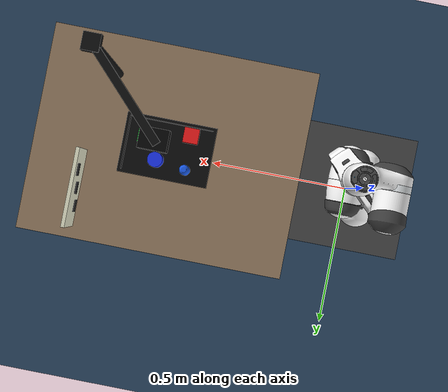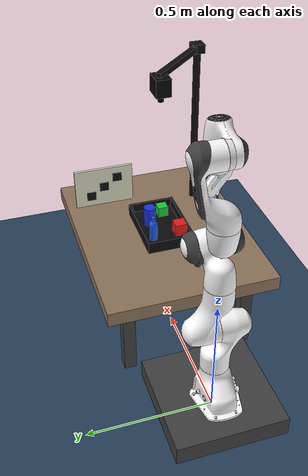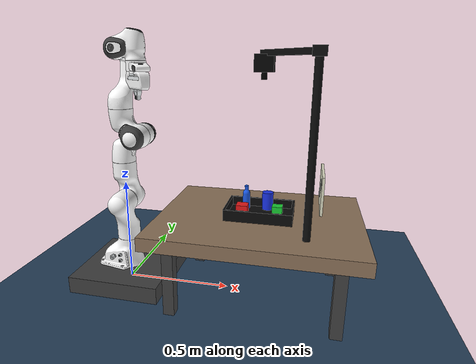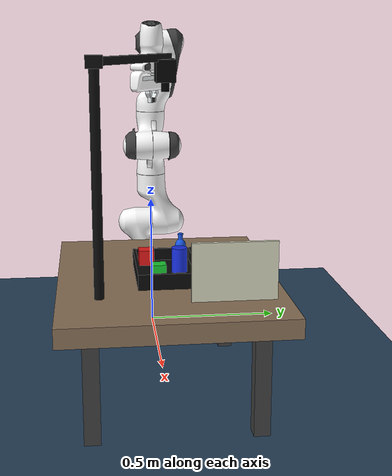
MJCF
<mujoco model="panda scene">
  <include file="panda.xml"/>

  <statistic center="0.3 0 0.4" extent="1"/>

  <visual>
    <headlight diffuse="0.6 0.6 0.6" ambient="0.3 0.3 0.3" specular="0 0 0"/>
    <rgba haze="0.15 0.25 0.35 1"/>
    <global azimuth="120" elevation="-20"/>
  </visual>

  <asset>
    <texture type="skybox" builtin="gradient" rgb1="0.3 0.5 0.7" rgb2="0 0 0" width="512" height="3072"/>
    <texture type="2d" name="groundplane" builtin="checker" mark="edge" rgb1="0.2 0.3 0.4" rgb2="0.1 0.2 0.3"
      markrgb="0.8 0.8 0.8" width="300" height="300"/>
    <material name="groundplane" texture="groundplane" texuniform="true" texrepeat="5 5" reflectance="0.2"/>

    <!-- Fusion 360 authored tray mesh.
         The STL is exported in millimeters, therefore scale is 0.001. -->
    <mesh name="custom_tray_mesh"
          file="custom_tray.stl"
          scale="0.001 0.001 0.001"/>

    <!-- Fusion 360 authored bottle mesh.
         The STL is exported in millimeters, therefore scale is 0.001. -->
    <mesh name="fusion360_bottle_mesh"
          file="bottle.stl"
          scale="0.001 0.001 0.001"/>

  </asset>

  <worldbody>
    <light pos="0 0 1.5" dir="0 0 -1" directional="true"/>
    <geom name="floor" size="0 0 0.05" type="plane" material="groundplane"/>

    <!-- ================= Tabletop data-collection station ================ -->

    <body name="robot_base_platform" pos="0 0 0.040">
      <geom name="robot_base_platform_geom"
            type="box"
            size="0.22 0.22 0.040"
            rgba="0.25 0.25 0.25 1"
            friction="1.0 0.005 0.0001"/>
    </body>

    <!-- Tabletop workspace. All dimensions are in meters. -->
    <body name="data_collection_table" pos="0.65 0 0.36">
      <geom name="tabletop"
            type="box"
            size="0.45 0.35 0.03"
            rgba="0.55 0.45 0.35 1"
            friction="1.0 0.005 0.0001"/>

      <geom name="table_leg_front_left"
            type="box"
            pos="0.35 0.25 -0.20"
            size="0.025 0.025 0.20"
            rgba="0.25 0.25 0.25 1"/>

      <geom name="table_leg_front_right"
            type="box"
            pos="0.35 -0.25 -0.20"
            size="0.025 0.025 0.20"
            rgba="0.25 0.25 0.25 1"/>

      <geom name="table_leg_back_left"
            type="box"
            pos="-0.35 0.25 -0.20"
            size="0.025 0.025 0.20"
            rgba="0.25 0.25 0.25 1"/>

      <geom name="table_leg_back_right"
            type="box"
            pos="-0.35 -0.25 -0.20"
            size="0.025 0.025 0.20"
            rgba="0.25 0.25 0.25 1"/>
    </body>

    <!-- Invisible primitive collision tray.
    The Fusion 360 STL tray is used for visual appearance.
    These box geoms provide stable physical contact. -->
    <body name="primitive_object_tray" pos="0.65 0 0.390">
      <!-- Tray base: 300 mm x 200 mm x 10 mm -->
      <geom name="tray_base"
            type="box"
            pos="0 0 0.005"
            size="0.150 0.100 0.005"
            rgba="0 0 0 0"
            friction="1.0 0.005 0.0001"/>

      <!-- Tray walls: approximately 40 mm high, 10 mm thick -->
      <geom name="tray_wall_left"
            type="box"
            pos="0 0.095 0.030"
            size="0.150 0.005 0.020"
            rgba="0 0 0 0"
            friction="1.0 0.005 0.0001"/>

      <geom name="tray_wall_right"
            type="box"
            pos="0 -0.095 0.030"
            size="0.150 0.005 0.020"
            rgba="0 0 0 0"
            friction="1.0 0.005 0.0001"/>

      <geom name="tray_wall_front"
            type="box"
            pos="0.145 0 0.030"
            size="0.005 0.090 0.020"
            rgba="0 0 0 0"
            friction="1.0 0.005 0.0001"/>

      <geom name="tray_wall_back"
            type="box"
            pos="-0.145 0 0.030"
            size="0.005 0.090 0.020"
            rgba="0 0 0 0"
            friction="1.0 0.005 0.0001"/>
    </body>

    <!-- Three free manipulation objects for interaction/data collection. -->
    <body name="red_cube" pos="0.58 -0.06 0.435">
      <freejoint/>
      <geom name="red_cube_geom"
            type="box"
            size="0.025 0.025 0.025"
            mass="0.05"
            rgba="0.9 0.1 0.1 1"
            friction="1.0 0.005 0.0001"/>
    </body>

    <body name="blue_cylinder" pos="0.68 0.04 0.450">
      <freejoint/>
      <geom name="blue_cylinder_geom"
            type="cylinder"
            size="0.025 0.04"
            mass="0.07"
            rgba="0.1 0.2 0.9 1"
            friction="1.0 0.005 0.0001"/>
    </body>

    <body name="green_cube" pos="0.73 -0.03 0.432">
      <freejoint/>
      <geom name="green_cube_geom"
            type="box"
            size="0.022 0.022 0.022"
            mass="0.04"
            rgba="0.1 0.8 0.2 1"
            friction="1.0 0.005 0.0001"/>
    </body>

    <!-- Overhead camera stand to represent a data-collection sensor setup. -->
    <body name="camera_stand" pos="0.86 -0.22 0.740">
      <!-- Vertical pole: bottom touches table surface at z = 0.39 -->
      <geom name="camera_stand_vertical"
            type="cylinder"
            size="0.015 0.35"
            rgba="0.05 0.05 0.05 1"/>

      <!-- Connector at the top of the pole -->
      <geom name="camera_stand_top_connector"
            type="box"
            pos="0 0 0.35"
            size="0.025 0.025 0.018"
            rgba="0.05 0.05 0.05 1"/>

      <!-- Diagonal arm from the pole toward the tray center -->
      <geom name="camera_stand_arm"
            type="box"
            pos="-0.105 0.11 0.35"
            size="0.17 0.012 0.012"
            euler="0 0 2.333"
            rgba="0.05 0.05 0.05 1"/>

      <!-- Camera body above the tray -->
      <geom name="camera_body"
            type="box"
            pos="-0.21 0.22 0.31"
            size="0.04 0.03 0.035"
            rgba="0.02 0.02 0.02 1"/>

      <!-- Downward-facing lens -->
      <geom name="camera_lens"
            type="cylinder"
            pos="-0.21 0.22 0.270"
            size="0.012 0.025"
            rgba="0.0 0.0 0.0 1"/>
    </body>

    <!-- Simple calibration board / visual reference target. -->
    <body name="calibration_board" pos="0.92 0.18 0.480">
      <geom name="calibration_board_panel"
            type="box"
            size="0.006 0.13 0.09"
            rgba="0.85 0.85 0.75 1"/>
      <geom name="calibration_board_marker_1"
            type="box"
            pos="-0.007 -0.06 0.04"
            size="0.002 0.02 0.02"
            rgba="0.05 0.05 0.05 1"/>
      <geom name="calibration_board_marker_2"
            type="box"
            pos="-0.007 0.00 0.00"
            size="0.002 0.02 0.02"
            rgba="0.05 0.05 0.05 1"/>
      <geom name="calibration_board_marker_3"
            type="box"
            pos="-0.007 0.06 -0.04"
            size="0.002 0.02 0.02"
            rgba="0.05 0.05 0.05 1"/>
    </body>

    <!-- Visual mesh authored in Fusion 360.
         Physics contacts are handled by invisible primitive tray geoms above. -->
    <body name="fusion360_tray_visual" pos="0.65 0 0.39">
      <geom name="fusion360_tray_visual_geom"
            type="mesh"
            mesh="custom_tray_mesh"
            rgba="0.04 0.04 0.04 1"
            contype="0"
            conaffinity="0"/>
    </body>

    <body name="fusion360_bottle" pos="0.58 0.055 0.400">
      <freejoint/>

      <!-- Fusion 360 bottle mesh used for visual appearance only. -->
      <geom name="fusion360_bottle_visual"
            type="mesh"
            mesh="fusion360_bottle_mesh"
            rgba="0.10 0.35 0.90 1"
            contype="0"
            conaffinity="0"/>

      <!-- Simplified collision geometry for stable physics. -->
      <geom name="fusion360_bottle_collision_body"
            type="cylinder"
            pos="0 0 0.055"
            size="0.017 0.055"
            mass="0.06"
            rgba="0 0 0 0"
            friction="1.0 0.005 0.0001"/>
    </body>

  </worldbody>
</mujoco>

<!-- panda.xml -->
<mujoco model="panda">
  <compiler angle="radian" meshdir="assets" autolimits="true"/>

  <option integrator="implicitfast"/>

  <default>
    <default class="panda">
      <material specular="0.5" shininess="0.25"/>
      <joint armature="0.1" damping="1" axis="0 0 1" range="-2.8973 2.8973"/>
      <general dyntype="none" biastype="affine" ctrlrange="-2.8973 2.8973" forcerange="-87 87"/>
      <default class="finger">
        <joint axis="0 1 0" type="slide" range="0 0.04"/>
      </default>

      <default class="visual">
        <geom type="mesh" contype="0" conaffinity="0" group="2"/>
      </default>
      <default class="collision">
        <geom type="mesh" group="3"/>
        <default class="fingertip_pad_collision_1">
          <geom type="box" size="0.0085 0.004 0.0085" pos="0 0.0055 0.0445"/>
        </default>
        <default class="fingertip_pad_collision_2">
          <geom type="box" size="0.003 0.002 0.003" pos="0.0055 0.002 0.05"/>
        </default>
        <default class="fingertip_pad_collision_3">
          <geom type="box" size="0.003 0.002 0.003" pos="-0.0055 0.002 0.05"/>
        </default>
        <default class="fingertip_pad_collision_4">
          <geom type="box" size="0.003 0.002 0.0035" pos="0.0055 0.002 0.0395"/>
        </default>
        <default class="fingertip_pad_collision_5">
          <geom type="box" size="0.003 0.002 0.0035" pos="-0.0055 0.002 0.0395"/>
        </default>
      </default>
    </default>
  </default>

  <asset>
    <material class="panda" name="white" rgba="1 1 1 1"/>
    <material class="panda" name="off_white" rgba="0.901961 0.921569 0.929412 1"/>
    <material class="panda" name="black" rgba="0.25 0.25 0.25 1"/>
    <material class="panda" name="green" rgba="0 1 0 1"/>
    <material class="panda" name="light_blue" rgba="0.039216 0.541176 0.780392 1"/>

    <!-- Collision meshes -->
    <mesh name="link0_c" file="link0.stl"/>
    <mesh name="link1_c" file="link1.stl"/>
    <mesh name="link2_c" file="link2.stl"/>
    <mesh name="link3_c" file="link3.stl"/>
    <mesh name="link4_c" file="link4.stl"/>
    <mesh name="link5_c0" file="link5_collision_0.obj"/>
    <mesh name="link5_c1" file="link5_collision_1.obj"/>
    <mesh name="link5_c2" file="link5_collision_2.obj"/>
    <mesh name="link6_c" file="link6.stl"/>
    <mesh name="link7_c" file="link7.stl"/>
    <mesh name="hand_c" file="hand.stl"/>

    <!-- Visual meshes -->
    <mesh file="link0_0.obj"/>
    <mesh file="link0_1.obj"/>
    <mesh file="link0_2.obj"/>
    <mesh file="link0_3.obj"/>
    <mesh file="link0_4.obj"/>
    <mesh file="link0_5.obj"/>
    <mesh file="link0_7.obj"/>
    <mesh file="link0_8.obj"/>
    <mesh file="link0_9.obj"/>
    <mesh file="link0_10.obj"/>
    <mesh file="link0_11.obj"/>
    <mesh file="link1.obj"/>
    <mesh file="link2.obj"/>
    <mesh file="link3_0.obj"/>
    <mesh file="link3_1.obj"/>
    <mesh file="link3_2.obj"/>
    <mesh file="link3_3.obj"/>
    <mesh file="link4_0.obj"/>
    <mesh file="link4_1.obj"/>
    <mesh file="link4_2.obj"/>
    <mesh file="link4_3.obj"/>
    <mesh file="link5_0.obj"/>
    <mesh file="link5_1.obj"/>
    <mesh file="link5_2.obj"/>
    <mesh file="link6_0.obj"/>
    <mesh file="link6_1.obj"/>
    <mesh file="link6_2.obj"/>
    <mesh file="link6_3.obj"/>
    <mesh file="link6_4.obj"/>
    <mesh file="link6_5.obj"/>
    <mesh file="link6_6.obj"/>
    <mesh file="link6_7.obj"/>
    <mesh file="link6_8.obj"/>
    <mesh file="link6_9.obj"/>
    <mesh file="link6_10.obj"/>
    <mesh file="link6_11.obj"/>
    <mesh file="link6_12.obj"/>
    <mesh file="link6_13.obj"/>
    <mesh file="link6_14.obj"/>
    <mesh file="link6_15.obj"/>
    <mesh file="link6_16.obj"/>
    <mesh file="link7_0.obj"/>
    <mesh file="link7_1.obj"/>
    <mesh file="link7_2.obj"/>
    <mesh file="link7_3.obj"/>
    <mesh file="link7_4.obj"/>
    <mesh file="link7_5.obj"/>
    <mesh file="link7_6.obj"/>
    <mesh file="link7_7.obj"/>
    <mesh file="hand_0.obj"/>
    <mesh file="hand_1.obj"/>
    <mesh file="hand_2.obj"/>
    <mesh file="hand_3.obj"/>
    <mesh file="hand_4.obj"/>
    <mesh file="finger_0.obj"/>
    <mesh file="finger_1.obj"/>
  </asset>

  <worldbody>
    <light name="top" pos="0 0 2" mode="trackcom"/>
    <body name="link0" childclass="panda" pos="0 0 0.080">
      <inertial mass="0.629769" pos="-0.041018 -0.00014 0.049974"
        fullinertia="0.00315 0.00388 0.004285 8.2904e-7 0.00015 8.2299e-6"/>
      <geom mesh="link0_0" material="off_white" class="visual"/>
      <geom mesh="link0_1" material="black" class="visual"/>
      <geom mesh="link0_2" material="off_white" class="visual"/>
      <geom mesh="link0_3" material="black" class="visual"/>
      <geom mesh="link0_4" material="off_white" class="visual"/>
      <geom mesh="link0_5" material="black" class="visual"/>
      <geom mesh="link0_7" material="white" class="visual"/>
      <geom mesh="link0_8" material="white" class="visual"/>
      <geom mesh="link0_9" material="black" class="visual"/>
      <geom mesh="link0_10" material="off_white" class="visual"/>
      <geom mesh="link0_11" material="white" class="visual"/>
      <geom mesh="link0_c" class="collision"/>
      <body name="link1" pos="0 0 0.333">
        <inertial mass="4.970684" pos="0.003875 0.002081 -0.04762"
          fullinertia="0.70337 0.70661 0.0091170 -0.00013900 0.0067720 0.019169"/>
        <joint name="joint1"/>
        <geom material="white" mesh="link1" class="visual"/>
        <geom mesh="link1_c" class="collision"/>
        <body name="link2" quat="1 -1 0 0">
          <inertial mass="0.646926" pos="-0.003141 -0.02872 0.003495"
            fullinertia="0.0079620 2.8110e-2 2.5995e-2 -3.925e-3 1.0254e-2 7.04e-4"/>
          <joint name="joint2" range="-1.7628 1.7628"/>
          <geom material="white" mesh="link2" class="visual"/>
          <geom mesh="link2_c" class="collision"/>
          <body name="link3" pos="0 -0.316 0" quat="1 1 0 0">
            <joint name="joint3"/>
            <inertial mass="3.228604" pos="2.7518e-2 3.9252e-2 -6.6502e-2"
              fullinertia="3.7242e-2 3.6155e-2 1.083e-2 -4.761e-3 -1.1396e-2 -1.2805e-2"/>
            <geom mesh="link3_0" material="white" class="visual"/>
            <geom mesh="link3_1" material="white" class="visual"/>
            <geom mesh="link3_2" material="white" class="visual"/>
            <geom mesh="link3_3" material="black" class="visual"/>
            <geom mesh="link3_c" class="collision"/>
            <body name="link4" pos="0.0825 0 0" quat="1 1 0 0">
              <inertial mass="3.587895" pos="-5.317e-2 1.04419e-1 2.7454e-2"
                fullinertia="2.5853e-2 1.9552e-2 2.8323e-2 7.796e-3 -1.332e-3 8.641e-3"/>
              <joint name="joint4" range="-3.0718 -0.0698"/>
              <geom mesh="link4_0" material="white" class="visual"/>
              <geom mesh="link4_1" material="white" class="visual"/>
              <geom mesh="link4_2" material="black" class="visual"/>
              <geom mesh="link4_3" material="white" class="visual"/>
              <geom mesh="link4_c" class="collision"/>
              <body name="link5" pos="-0.0825 0.384 0" quat="1 -1 0 0">
                <inertial mass="1.225946" pos="-1.1953e-2 4.1065e-2 -3.8437e-2"
                  fullinertia="3.5549e-2 2.9474e-2 8.627e-3 -2.117e-3 -4.037e-3 2.29e-4"/>
                <joint name="joint5"/>
                <geom mesh="link5_0" material="black" class="visual"/>
                <geom mesh="link5_1" material="white" class="visual"/>
                <geom mesh="link5_2" material="white" class="visual"/>
                <geom mesh="link5_c0" class="collision"/>
                <geom mesh="link5_c1" class="collision"/>
                <geom mesh="link5_c2" class="collision"/>
                <body name="link6" quat="1 1 0 0">
                  <inertial mass="1.666555" pos="6.0149e-2 -1.4117e-2 -1.0517e-2"
                    fullinertia="1.964e-3 4.354e-3 5.433e-3 1.09e-4 -1.158e-3 3.41e-4"/>
                  <joint name="joint6" range="-0.0175 3.7525"/>
                  <geom mesh="link6_0" material="off_white" class="visual"/>
                  <geom mesh="link6_1" material="white" class="visual"/>
                  <geom mesh="link6_2" material="black" class="visual"/>
                  <geom mesh="link6_3" material="white" class="visual"/>
                  <geom mesh="link6_4" material="white" class="visual"/>
                  <geom mesh="link6_5" material="white" class="visual"/>
                  <geom mesh="link6_6" material="white" class="visual"/>
                  <geom mesh="link6_7" material="light_blue" class="visual"/>
                  <geom mesh="link6_8" material="light_blue" class="visual"/>
                  <geom mesh="link6_9" material="black" class="visual"/>
                  <geom mesh="link6_10" material="black" class="visual"/>
                  <geom mesh="link6_11" material="white" class="visual"/>
                  <geom mesh="link6_12" material="green" class="visual"/>
                  <geom mesh="link6_13" material="white" class="visual"/>
                  <geom mesh="link6_14" material="black" class="visual"/>
                  <geom mesh="link6_15" material="black" class="visual"/>
                  <geom mesh="link6_16" material="white" class="visual"/>
                  <geom mesh="link6_c" class="collision"/>
                  <body name="link7" pos="0.088 0 0" quat="1 1 0 0">
                    <inertial mass="7.35522e-01" pos="1.0517e-2 -4.252e-3 6.1597e-2"
                      fullinertia="1.2516e-2 1.0027e-2 4.815e-3 -4.28e-4 -1.196e-3 -7.41e-4"/>
                    <joint name="joint7"/>
                    <geom mesh="link7_0" material="white" class="visual"/>
                    <geom mesh="link7_1" material="black" class="visual"/>
                    <geom mesh="link7_2" material="black" class="visual"/>
                    <geom mesh="link7_3" material="black" class="visual"/>
                    <geom mesh="link7_4" material="black" class="visual"/>
                    <geom mesh="link7_5" material="black" class="visual"/>
                    <geom mesh="link7_6" material="black" class="visual"/>
                    <geom mesh="link7_7" material="white" class="visual"/>
                    <geom mesh="link7_c" class="collision"/>
                    <body name="hand" pos="0 0 0.107" quat="0.9238795 0 0 -0.3826834">
                      <inertial mass="0.73" pos="-0.01 0 0.03" diaginertia="0.001 0.0025 0.0017"/>
                      <geom mesh="hand_0" material="off_white" class="visual"/>
                      <geom mesh="hand_1" material="black" class="visual"/>
                      <geom mesh="hand_2" material="black" class="visual"/>
                      <geom mesh="hand_3" material="white" class="visual"/>
                      <geom mesh="hand_4" material="off_white" class="visual"/>
                      <geom mesh="hand_c" class="collision"/>
                      <body name="left_finger" pos="0 0 0.0584">
                        <inertial mass="0.015" pos="0 0 0" diaginertia="2.375e-6 2.375e-6 7.5e-7"/>
                        <joint name="finger_joint1" class="finger"/>
                        <geom mesh="finger_0" material="off_white" class="visual"/>
                        <geom mesh="finger_1" material="black" class="visual"/>
                        <geom mesh="finger_0" class="collision"/>
                        <geom class="fingertip_pad_collision_1"/>
                        <geom class="fingertip_pad_collision_2"/>
                        <geom class="fingertip_pad_collision_3"/>
                        <geom class="fingertip_pad_collision_4"/>
                        <geom class="fingertip_pad_collision_5"/>
                      </body>
                      <body name="right_finger" pos="0 0 0.0584" quat="0 0 0 1">
                        <inertial mass="0.015" pos="0 0 0" diaginertia="2.375e-6 2.375e-6 7.5e-7"/>
                        <joint name="finger_joint2" class="finger"/>
                        <geom mesh="finger_0" material="off_white" class="visual"/>
                        <geom mesh="finger_1" material="black" class="visual"/>
                        <geom mesh="finger_0" class="collision"/>
                        <geom class="fingertip_pad_collision_1"/>
                        <geom class="fingertip_pad_collision_2"/>
                        <geom class="fingertip_pad_collision_3"/>
                        <geom class="fingertip_pad_collision_4"/>
                        <geom class="fingertip_pad_collision_5"/>
                      </body>
                    </body>
                  </body>
                </body>
              </body>
            </body>
          </body>
        </body>
      </body>
    </body>
  </worldbody>

  <tendon>
    <fixed name="split">
      <joint joint="finger_joint1" coef="0.5"/>
      <joint joint="finger_joint2" coef="0.5"/>
    </fixed>
  </tendon>

  <equality>
    <joint joint1="finger_joint1" joint2="finger_joint2" solimp="0.95 0.99 0.001" solref="0.005 1"/>
  </equality>

  <actuator>
    <general class="panda" name="actuator1" joint="joint1" gainprm="4500" biasprm="0 -4500 -450"/>
    <general class="panda" name="actuator2" joint="joint2" gainprm="4500" biasprm="0 -4500 -450"
      ctrlrange="-1.7628 1.7628"/>
    <general class="panda" name="actuator3" joint="joint3" gainprm="3500" biasprm="0 -3500 -350"/>
    <general class="panda" name="actuator4" joint="joint4" gainprm="3500" biasprm="0 -3500 -350"
      ctrlrange="-3.0718 -0.0698"/>
    <general class="panda" name="actuator5" joint="joint5" gainprm="2000" biasprm="0 -2000 -200" forcerange="-12 12"/>
    <general class="panda" name="actuator6" joint="joint6" gainprm="2000" biasprm="0 -2000 -200" forcerange="-12 12"
      ctrlrange="-0.0175 3.7525"/>
    <general class="panda" name="actuator7" joint="joint7" gainprm="2000" biasprm="0 -2000 -200" forcerange="-12 12"/>
    <!-- Remap original ctrlrange (0, 0.04) to (0, 255): 0.04 * 100 / 255 = 0.01568627451 -->
    <general class="panda" name="actuator8" tendon="split" forcerange="-100 100" ctrlrange="0 255"
      gainprm="0.01568627451 0 0" biasprm="0 -100 -10"/>
  </actuator>

  <keyframe>
    <key name="home" qpos="0 0 0 -1.57079 0 1.57079 -0.7853 0.04 0.04" ctrl="0 0 0 -1.57079 0 1.57079 -0.7853 255"/>
  </keyframe>

  <contact>
    <exclude body1="link0" body2="link1"/>
  </contact>
</mujoco>
